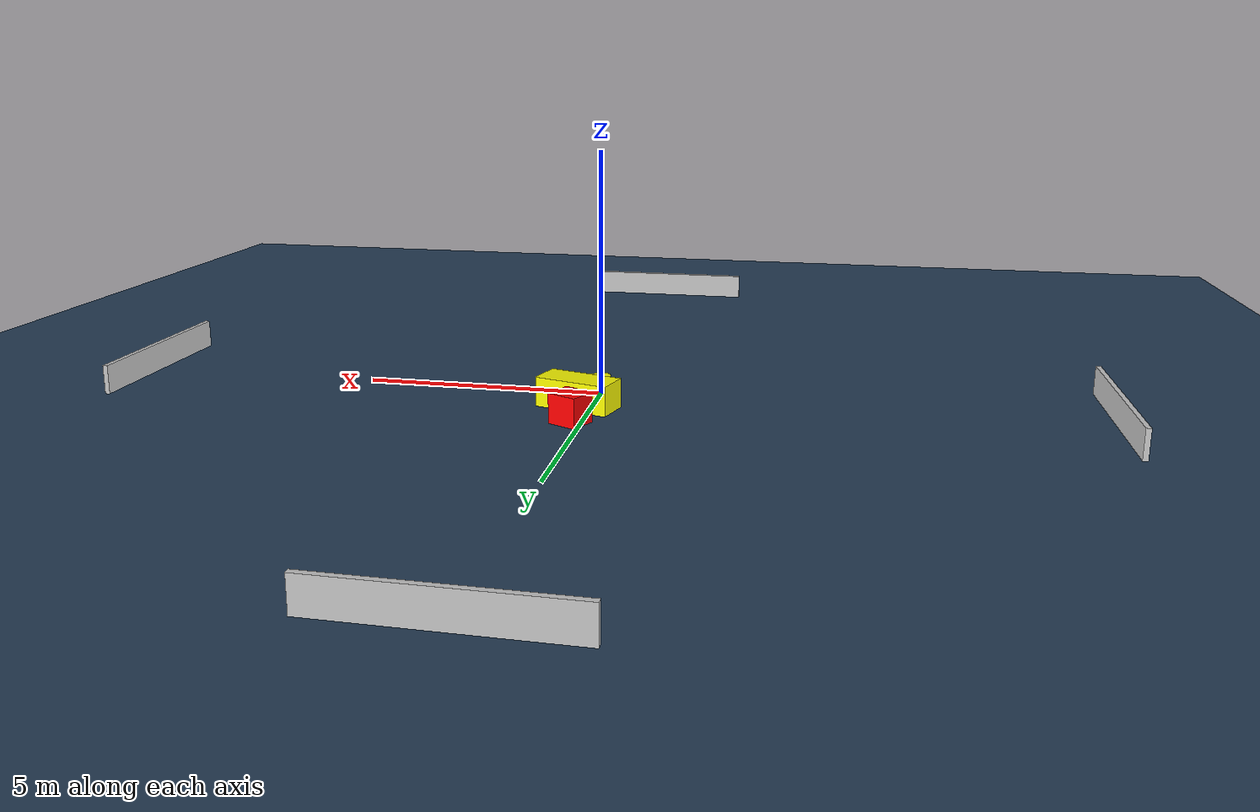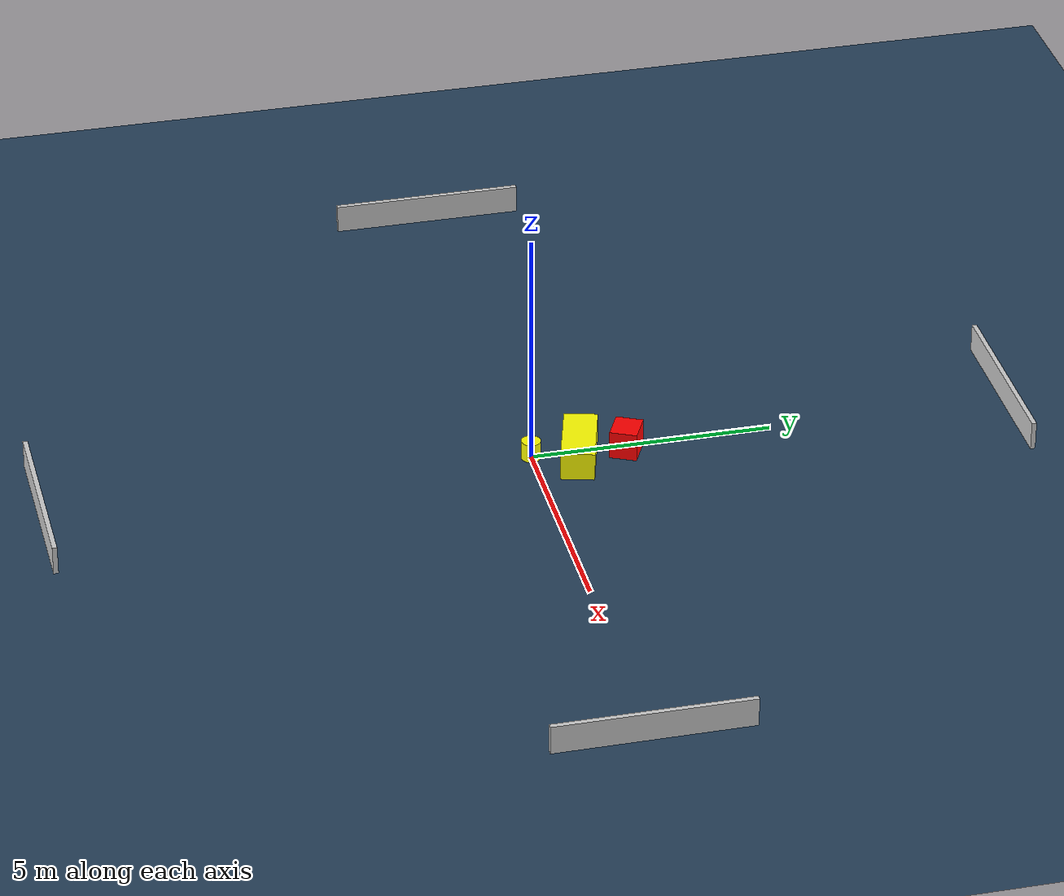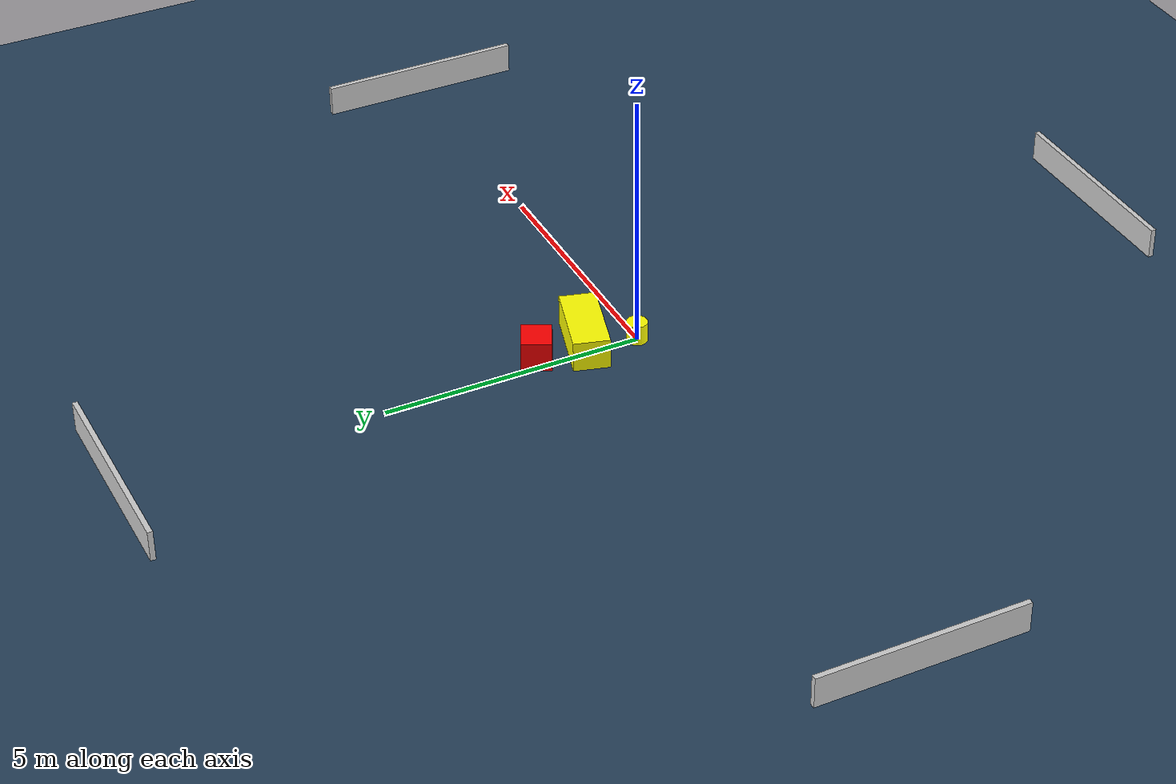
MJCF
<?xml version="1.0" ?>
<mujoco model="generated_environment">
  <option timestep="0.01" integrator="RK4" cone="elliptic"/>
  <default>
    <geom density="1"/>
  </default>
  <asset>
    <texture builtin="gradient" height="3072" name="skybox" rgb1="0.3 0.5 0.7" rgb2="0 0 0" type="skybox" width="512"/>
    <texture builtin="checker" height="300" name="groundplane" rgb1="0.2 0.3 0.4" rgb2="0.1 0.2 0.3" type="2d" width="300"/>
    <material name="groundplane" reflectance="0.2" texrepeat="5 5" texture="groundplane"/>
  </asset>
  <worldbody>
    <light dir="0 0 -1" directional="true" pos="0 0 1.5"/>
    <geom condim="3" friction="0.5 0.005 0.001" material="groundplane" name="floor" pos="0 0 0" size="0 0 0.05" type="plane"/>
    <body name="walls">
      <geom name="wall_1" condim="4" pos="-10.0 0.0 0.3" rgba="0.800000011920929 0.800000011920929 0.800000011920929 1.0" size="0.05 2.0 0.3" type="box"/>
      <geom name="wall_2" condim="4" pos="10.0 0.0 0.3" rgba="0.800000011920929 0.800000011920929 0.800000011920929 1.0" size="0.05 2.0 0.3" type="box"/>
      <geom name="wall_3" condim="4" pos="0.0 -10.0 0.3" rgba="0.800000011920929 0.800000011920929 0.800000011920929 1.0" size="2.0 0.05 0.3" type="box"/>
      <geom name="wall_4" condim="4" pos="0.0 10.0 0.3" rgba="0.800000011920929 0.800000011920929 0.800000011920929 1.0" size="2.0 0.05 0.3" type="box"/>
    </body>
    <body name="robot">
      <joint name="joint_x" type="slide" pos="0 0 0" axis="1 0 0"/>
      <joint name="joint_y" type="slide" pos="0 0 0" axis="0 1 0"/>
      <geom name="robot" type="cylinder" pos="0.0 0.0 0.2" size="0.2 0.2 0.0" mass="5.0" friction="1.0 0.005 0.0001" condim="4" rgba="1.0 1.0 0.0 1.0"/>
    </body>
    <body name="obstacle_1_movable">
      <geom name="obstacle_1_movable" condim="4" pos="0.2802319239673012 0.9319281795283527 0.3" euler="0 0 164.06377118573155" friction="0.0 0.005 0.001" rgba="1.0 1.0 0.0 1.0" size="0.773468551270831 0.3463109016784689 0.3" type="box" mass="0.1"/>
      <joint type="free"/>
    </body>
    <body name="obstacle_2_static">
      <geom name="obstacle_2_static" condim="4" pos="0.21080806893624937 1.932385782936974 0.3" euler="0 0 243.93764765089375" friction="0.0 0.005 0.001" rgba="1.0 0.0 0.0 1.0" size="0.2827749660242204 0.3136175099790907 0.3" type="box"/>
    </body>
  </worldbody>
  <actuator>
    <motor name="actuator_x" joint="joint_x" gear="1" ctrlrange="-1 1"/>
    <motor name="actuator_y" joint="joint_y" gear="1" ctrlrange="-1 1"/>
  </actuator>
</mujoco>
